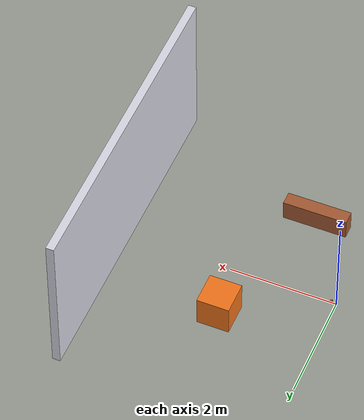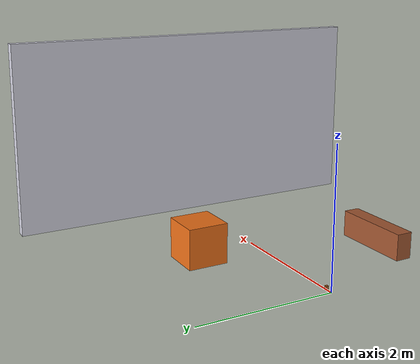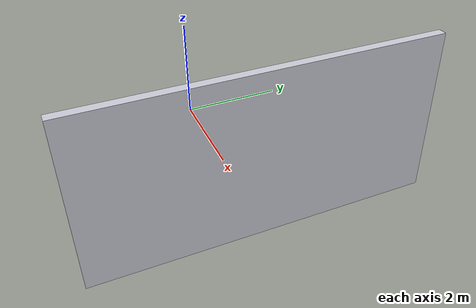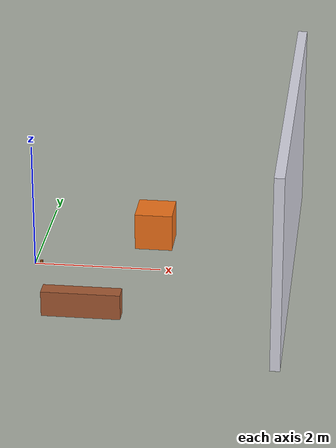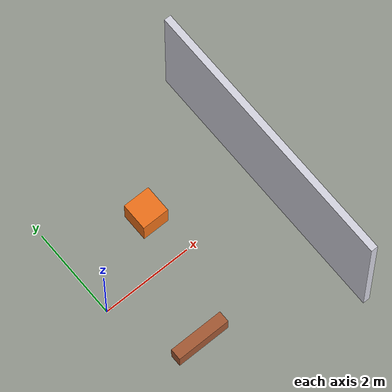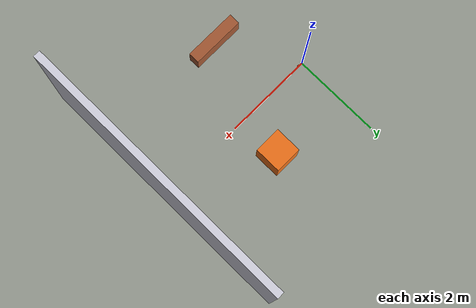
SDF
<sdf version="1.8">
 <world name="ghost_room">
  <model name="east">
   <static>true</static>
   <pose>4 0 1.5 0 0 0</pose>
   <link name="link">
    <collision name="collision"><geometry><box><size>0.15 6 3.0</size></box></geometry></collision>
    <visual name="visual">
     <geometry><box><size>0.15 6 3.0</size></box></geometry>
     <material><ambient>0.85 0.85 0.9 1</ambient><diffuse>0.85 0.85 0.9 1</diffuse></material>
    </visual>
   </link>
  </model>
  <model name="orange_box">
   <static>true</static>
   <pose>1.8 1 0.3 0 0 0</pose>
   <link name="link">
    <collision name="collision"><geometry><box><size>0.6 0.6 0.6</size></box></geometry></collision>
    <visual name="visual">
     <geometry><box><size>0.6 0.6 0.6</size></box></geometry>
     <material><ambient>0.95 0.45 0.1 1</ambient><diffuse>0.95 0.45 0.1 1</diffuse></material>
    </visual>
   </link>
  </model>
  <model name="low_barrier">
   <static>true</static>
   <pose>1 -1.6 0.2 0 0 0</pose>
   <link name="link">
    <collision name="collision"><geometry><box><size>1.2 0.25 0.4</size></box></geometry></collision>
    <visual name="visual">
     <geometry><box><size>1.2 0.25 0.4</size></box></geometry>
     <material><ambient>0.65 0.35 0.2 1</ambient><diffuse>0.65 0.35 0.2 1</diffuse></material>
    </visual>
   </link>
  </model>
  <model name="wood_block">
   <static>false</static>
   <pose>0.1 0.0 0.03 0 0 0</pose>
   <link name="link">
    <inertial>
     <mass>0.04</mass>
     <inertia>
      <ixx>1.7333333333333332e-05</ixx>
      <iyy>1.7333333333333332e-05</iyy>
      <izz>1.0666666666666669e-05</izz>
      <ixy>0</ixy>
      <ixz>0</ixz>
      <iyz>0</iyz>
     </inertia>
    </inertial>
    <visual name="wood_visual">
     <geometry><box><size>0.04 0.04 0.06</size></box></geometry>
     <material><ambient>0.65 0.35 0.12 1</ambient><diffuse>0.65 0.35 0.12 1</diffuse></material>
    </visual>
    <collision name="wood_collision">
     <geometry><box><size>0.04 0.04 0.06</size></box></geometry>
     <surface><friction><ode><mu>1.5</mu><mu2>1.5</mu2></ode></friction></surface>
    </collision>
   </link>
   <plugin filename="ignition-gazebo-pose-publisher-system" name="ignition::gazebo::systems::PosePublisher">
    <publish_model_pose>true</publish_model_pose>
    <publish_nested_model_pose>true</publish_nested_model_pose>
    <publish_link_pose>true</publish_link_pose>
    <use_pose_vector_msg>true</use_pose_vector_msg>
    <update_frequency>50</update_frequency>
   </plugin>
  </model>
 </world>
</sdf>
